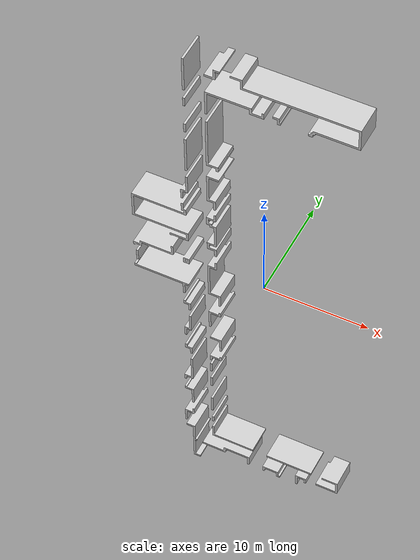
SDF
<?xml version="1.0"?>
<sdf version='1.6'>
  <model name='UT_Hallway'>
    <link name='UT_Hallway'>
      <pose frame=''>0 0 0 0 -0 0</pose>
      <inertial>
        <pose frame=''>-4.1092 -1.38 -2.0568 0 -0 0</pose>
        <mass>25709</mass>
        <inertia>
          <ixx>8.1871e+06</ixx>
          <ixy>-6.35011e-11</ixy>
          <ixz>977800</ixz>
          <iyy>8.6249e+06</iyy>
          <iyz>-5.11868e-10</iyz>
          <izz>470450</izz>
        </inertia>
      </inertial>
      <collision name='UT_Hallway_collision'>
        <pose frame=''>0 0 0 1.5708 -0 0</pose>
        <geometry>
          <mesh>
            <scale>1 1 1</scale>
            <uri>model://UT_Hallway/meshes/UT_Hallway.dae</uri>
          </mesh>
        </geometry>
      </collision>
      <visual name='UT_Hallway_visual'>
        <pose frame=''>0 0 0 1.5708 -0 0</pose>
        <geometry>
          <mesh>
            <scale>1 1 1</scale>
            <uri>model://UT_Hallway/meshes/UT_Hallway.dae</uri>
          </mesh>
        </geometry>
      </visual>
    </link>
  </model>
</sdf>
